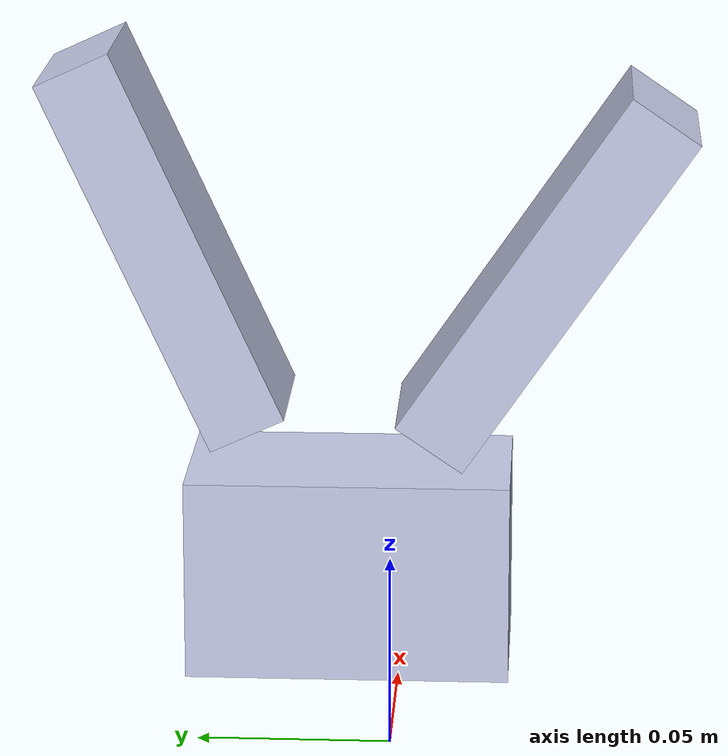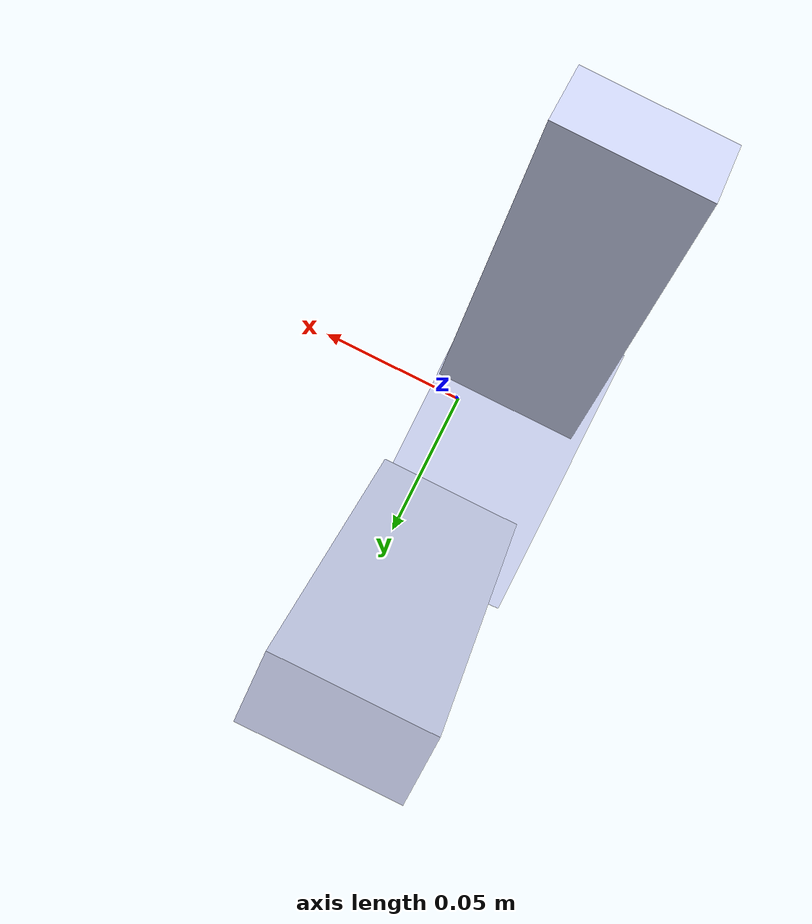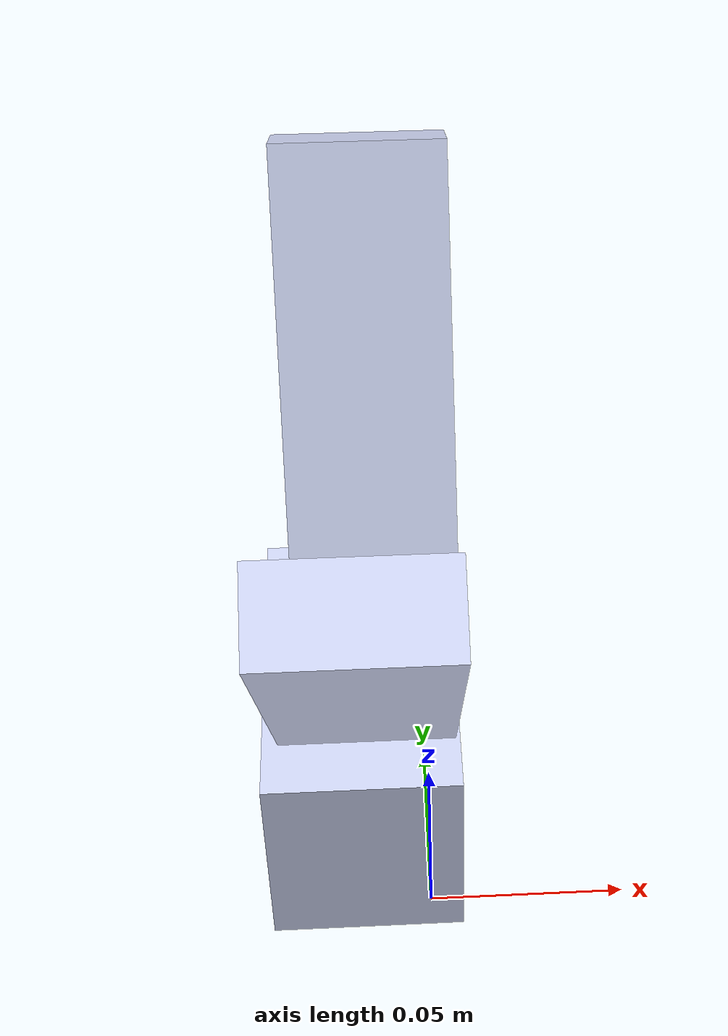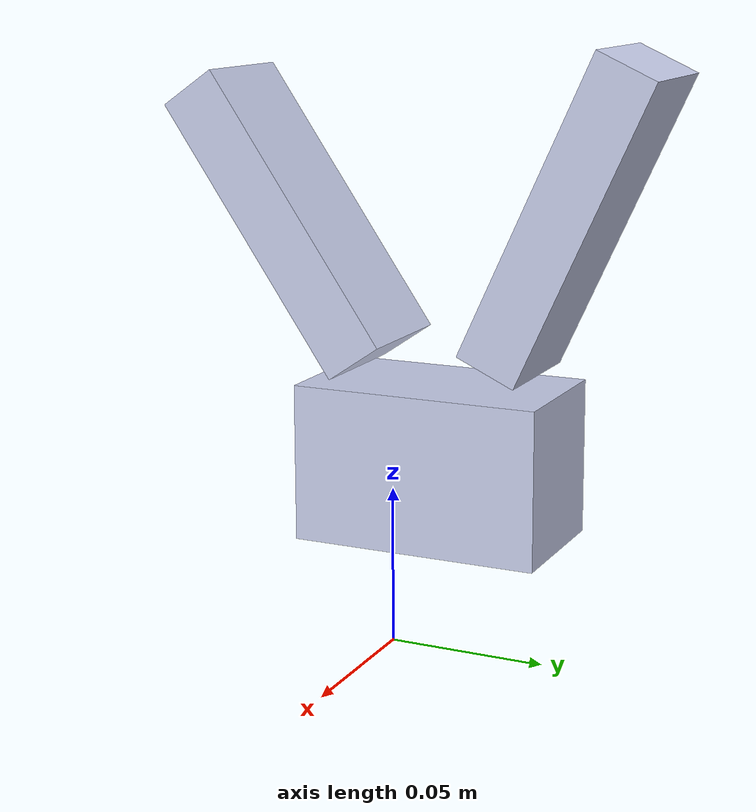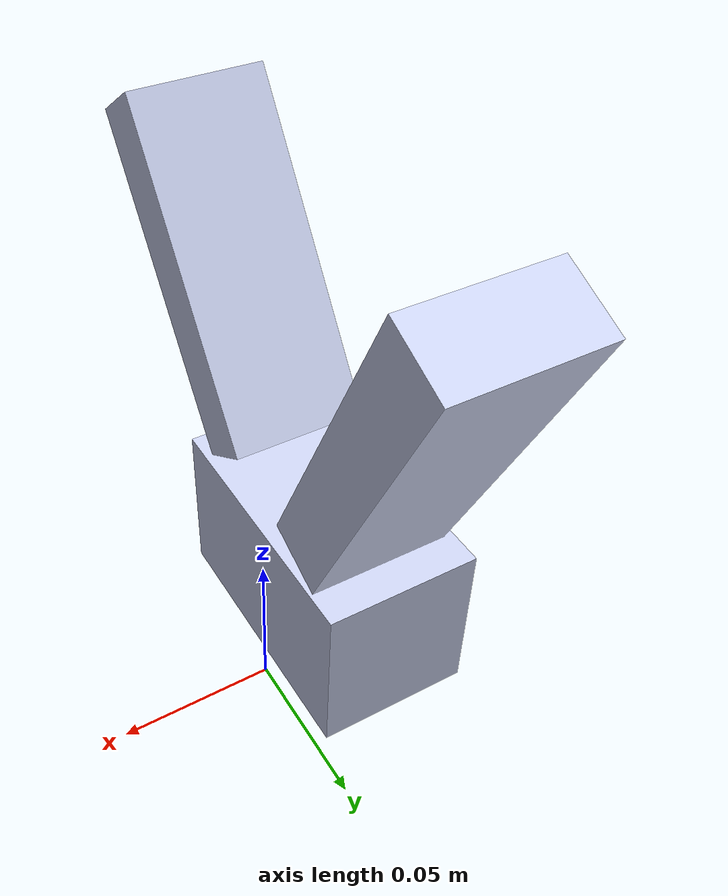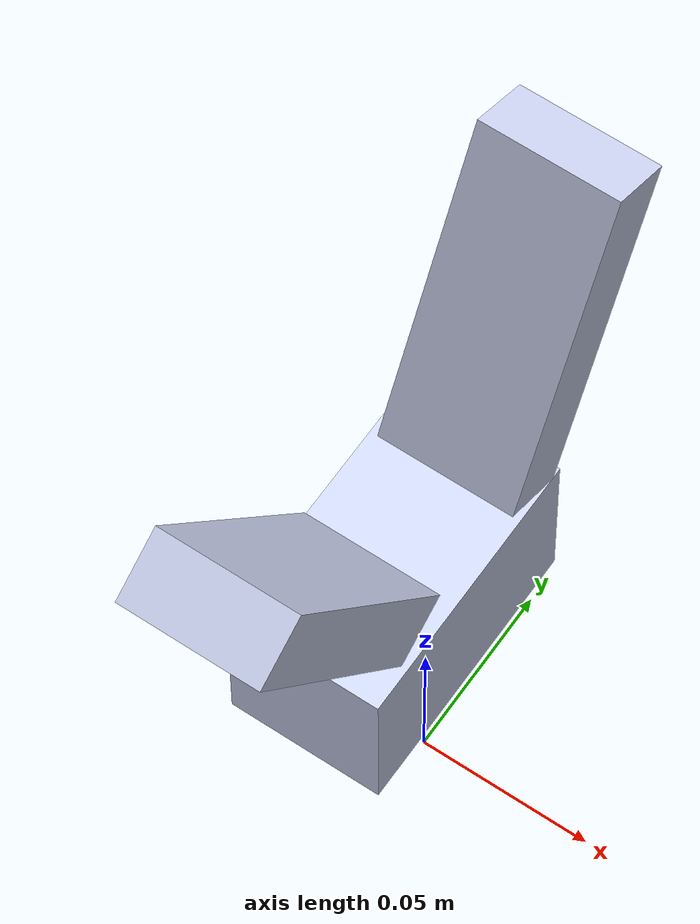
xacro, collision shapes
<robot name= "wheeltec_gripper" xmlns:xacro="http://www.ros.org/wiki/xacro">

 <link name="wheeltec_gripper_base_link"/>

  <joint name="wheeltec_gripper_base_link_joint" type="fixed">
        <parent link="wheeltec_gripper_base_link"/>
        <child link="wheeltec_gripper_chaise"/>
        <origin xyz="-0.005 0 0.0272" rpy="0 ${-pi/2} 0"/>
    </joint>
 <link name="wheeltec_gripper_chaise">
    <inertial>
      <origin
        xyz="0.0293534223009873 0.0090853921588317 0.0106597454256406"
        rpy="0 0 0" />
      <mass
        value="0.102600550272344" />
      <inertia
        ixx="5.20788240164367E-05"
        ixy="6.54090863453443E-09"
        ixz="4.42197949237897E-10"
        iyy="3.20696114264544E-05"
        iyz="-1.34739886846522E-06"
        izz="4.78657905498745E-05" />
    </inertial>
    <visual>
      <origin
        xyz="0 0 0"
        rpy="0 0 0" />
      <geometry>
        <mesh
          filename="package://wheeltec_gripper_description/meshes/gripperbase.STL" />
      </geometry>
      <material
        name="">
        <color
          rgba="0.792156862745098 0.819607843137255 0.933333333333333 1" />
      </material>
    </visual>
    <collision>
          <origin
        xyz="0.0293534223009873 0.0090853921588317 0.0106597454256406"
        rpy="0 0 0" />
            <geometry>
                <box size="0.05 0.08 0.045"/>
            </geometry>
    </collision>
 </link>
  <gazebo reference="wheeltec_gripper_chaise">
    <material>Gazebo/Yellow</material>
  </gazebo>
  <!-- right_finger finger -->
  <joint name="left_finger_joint" type="revolute">
    <mimic joint="right_finger_joint"/>
    <origin xyz="0.071508 -0.024545 -0.020131"
      rpy="0 0 0" />
    <parent link="wheeltec_gripper_chaise"/>
    <child link="left_finger"/>
    <axis  xyz="2.5729E-05 -0.080001 0.99679"/>
    <limit  lower="0" upper="0.7298" effort="10"  velocity="1.0" />
    <dynamics damping="1" friction="1"/>
  </joint>
   <link
    name="left_finger">
    <inertial>
      <origin
        xyz="0.0324201926836488 -0.0145963763975525 0.0293610241174507"
        rpy="0 0 0" />
      <mass
        value="0.0454654477917792" />
      <inertia
        ixx="8.54538343821676E-06"
        ixy="9.08652805486317E-06"
        ixz="7.29792995722946E-07"
        iyy="2.33471912608672E-05"
        iyz="-4.42703368456901E-07"
        izz="2.88247074076199E-05" />
    </inertial>
    <visual>
      <origin
        xyz="0 0 0"
        rpy="0 0 0" />
      <geometry>
        <mesh
          filename="package://wheeltec_gripper_description/meshes/fingers.STL" />
      </geometry>
      <material
        name="">
        <color
          rgba="0.792156862745098 0.819607843137255 0.933333333333333 1" />
      </material>
    </visual>
    <collision>
          <origin
        xyz="0.0324201926836488 -0.0145963763975525 0.0293610241174507"
        rpy="0 0 -0.6" />
            <geometry>
                <box size="0.1 0.02 0.04"/>
            </geometry>
      </collision>
  </link>
  <link
     name="wheeltec_gripper_center">
  </link>
  <joint name="wheeltec_gripper_center_joint" type="fixed">
    <origin xyz="0.125 0 0"
      rpy="0 0 0" />
    <parent link="wheeltec_gripper_chaise"/>
    <child link="wheeltec_gripper_center"/>
    <axis  xyz="0.125 0 0"/>
  </joint>

  <gazebo reference="left_finger">
    <material>Gazebo/Green</material>
  </gazebo>
  <xacro:macro name="transmission_macro" params="joint_name hardware_interface">
  <transmission name="trans_'${joint_name}'">
    <type>transmission_interface/SimpleTransmission</type>
    <joint name="left_finger_joint">
      <hardwareInterface>hardware_interface/${hardware_interface}</hardwareInterface>
    </joint>
    <actuator name="motor_left_finger_joint">
      <mechanicalReduction>1</mechanicalReduction>
      <hardwareInterface>hardware_interface/${hardware_interface}</hardwareInterface>
    </actuator>
  </transmission>
  </xacro:macro>
  <xacro:transmission_macro  joint_name="left_finger_joint" hardware_interface="PositionJointInterface"/>

  <!-- left_finger finger -->
  <joint name="right_finger_joint" type="revolute">
    <origin xyz="0.071485 0.047224 -0.01437"
      rpy="0 0 0.7298" />
    <parent link="wheeltec_gripper_chaise"/>
    <child link="right_finger"/>
    <axis xyz="-2.5729E-05 0.080001 -0.99679"/>
    <limit lower="0" upper="0.7298" effort="10"  velocity="1.0" />
    <mimic joint="left_finger_joint" multiplier="1" offset="0"/>
    <dynamics damping="1" friction="1"/>
  </joint>
   <link
    name="right_finger">
    <inertial>
      <origin
        xyz="0.0338378772194818 0.00534175148012631 0.0260745753522557"
        rpy="0 0 0" />
      <mass
        value="0.0454654472444149" />
      <inertia
        ixx="6.25574496069598E-06"
        ixy="-6.61546951322458E-06"
        ixz="-5.30362302163462E-07"
        iyy="2.5622104774585E-05"
        iyz="-2.59716886842376E-07"
        izz="2.88394198458503E-05" />
    </inertial>
    <visual>
      <origin
        xyz="0 0 0"
        rpy="0 0 0" />
      <geometry>
        <mesh
          filename="package://wheeltec_gripper_description/meshes/fingers.STL" />
      </geometry>
      <material
        name="">
        <color
          rgba="0.792156862745098 0.819607843137255 0.933333333333333 1" />
      </material>
    </visual>
    <collision>
          <origin
        xyz="0.0338378772194818 -0.02034175148012631 0.020745753522557"
        rpy="0 0 -0.3" />
            <geometry>
                <box size="0.1 0.02 0.04"/>
            </geometry>
      </collision>
  </link>
  <gazebo reference="right_finger">
    <material>Gazebo/Red</material>
  </gazebo>
<joint name="left_finger_joint">
  <param name="mimic">right_finger_joint</param>
  <param name="multiplier">1</param>
  <command_interface name="position"/>
  <state_interface name="position"/>
  <state_interface name="velocity"/>
  <state_interface name="effort"/>
</joint>
    <!-- ros_control plugin -->
    <gazebo>
      <plugin filename="gz_ros2_control-system" name="gz_ros2_control::GazeboSimROS2ControlPlugin">
        <parameters>$(find wheeltec_hardware_interface)/config/controllers.yaml</parameters>
      </plugin>
    </gazebo>

 <plugin filename="libgazebo_ros2_control.so" name="gazebo_ros2_control">
</plugin>
</robot>
